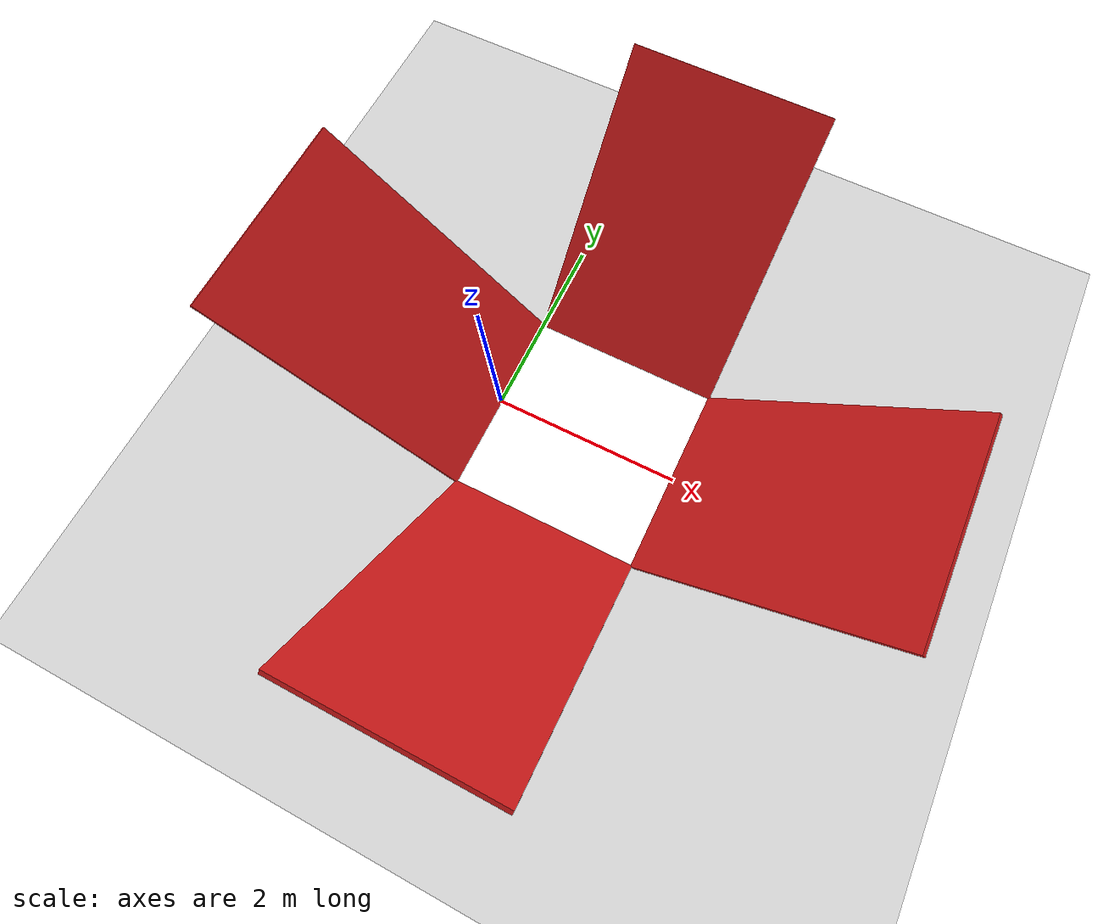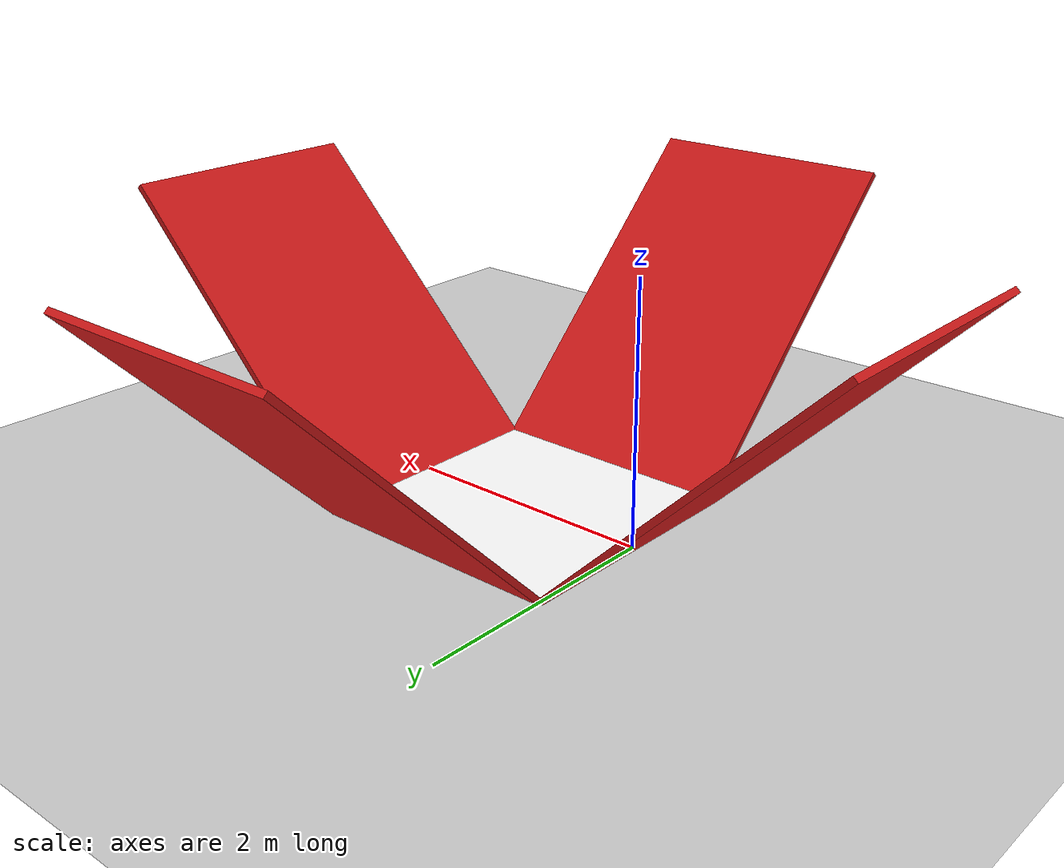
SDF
<?xml version='1.0'?>
<sdf version='1.7'>
  <world name='default'>
    <light name='sun' type='directional'>
      <cast_shadows>1</cast_shadows>
      <pose>0 0 10 0 -0 0</pose>
      <diffuse>0.8 0.8 0.8 1</diffuse>
      <specular>0.2 0.2 0.2 1</specular>
      <attenuation>
        <range>1000</range>
        <constant>0.9</constant>
        <linear>0.01</linear>
        <quadratic>0.001</quadratic>
      </attenuation>
      <direction>-0.5 0.1 -0.9</direction>
      <spot>
        <inner_angle>0</inner_angle>
        <outer_angle>0</outer_angle>
        <falloff>0</falloff>
      </spot>
    </light>
    <model name='ground_plane'>
      <static>1</static>
      <link name='link'>
        <collision name='collision'>
          <geometry>
            <plane>
              <normal>0 0 1</normal>
              <size>20 20</size>
            </plane>
          </geometry>
          <surface>
            <friction>
              <ode>
                <mu>100</mu>
                <mu2>50</mu2>
              </ode>
              <torsional>
                <ode/>
              </torsional>
            </friction>
            <contact>
              <ode/>
            </contact>
            <bounce/>
          </surface>
          <max_contacts>100</max_contacts>
        </collision>
        <visual name='visual'>
          <cast_shadows>0</cast_shadows>
          <geometry>
            <plane>
              <normal>0 0 1</normal>
              <size>20 20</size>
            </plane>
          </geometry>
          <material>
            <script>
              <uri>file://media/materials/scripts/gazebo.material</uri>
              <name>Gazebo/Grey</name>
            </script>
          </material>
        </visual>
        <self_collide>0</self_collide>
        <enable_wind>0</enable_wind>
        <kinematic>0</kinematic>
      </link>
    </model>
    <gravity>0 0 -9.8</gravity>
    <magnetic_field>6e-06 2.3e-05 -4.2e-05</magnetic_field>
    <atmosphere type='adiabatic'/>
    <physics type='ode'>
      <max_step_size>0.001</max_step_size>
      <real_time_factor>1</real_time_factor>
      <real_time_update_rate>1000</real_time_update_rate>
    </physics>
    <scene>
      <ambient>0.4 0.4 0.4 1</ambient>
      <background>0.7 0.7 0.7 1</background>
      <shadows>1</shadows>
    </scene>
    <wind/>
    <spherical_coordinates>
      <surface_model>EARTH_WGS84</surface_model>
      <latitude_deg>0</latitude_deg>
      <longitude_deg>0</longitude_deg>
      <elevation>0</elevation>
      <heading_deg>0</heading_deg>
    </spherical_coordinates>
    <include>
      <uri>model://qr_pad</uri>
      <name>target</name>
      <pose>1 0 0.002 0 0 0.00</pose>
    </include>
  </world>
</sdf>

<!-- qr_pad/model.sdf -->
<sdf version="1.9">
  <model name="qr_pad">
    <static>true</static>

    <link name="center_plate">
      <pose>0 0 0.01 0 0 0</pose>
      <visual name="visual">
        <geometry>
          <box>
            <size>2 2 0.02</size>
          </box>
        </geometry>
        <material>
          <ambient>1 1 1 1</ambient>
          <diffuse>1 1 1 1</diffuse>
          <pbr>
            <metal>
              <albedo_map>materials/textures/qr_code.png</albedo_map>
            </metal>
          </pbr>
        </material>
      </visual>
    </link>

    <link name="plate_north">
      <pose>2.06 0 1.06 0 -0.7854 0</pose>
      <visual name="visual">
        <geometry>
          <box><size>3 2 0.05</size></box>
        </geometry>
        <material><diffuse>0.8 0.1 0.1 1</diffuse></material>
      </visual>
    </link>

    <link name="plate_south">
      <pose>-2.06 0 1.06 0 0.7854 0</pose>
      <visual name="visual">
        <geometry>
          <box><size>3 2 0.05</size></box>
        </geometry>
        <material><diffuse>0.8 0.1 0.1 1</diffuse></material>
      </visual>
    </link>

    <link name="plate_east">
      <pose>0 2.06 1.06 0.7854 0 0</pose>
      <visual name="visual">
        <geometry>
          <box><size>2 3 0.05</size></box> </geometry>
        <material><diffuse>0.8 0.1 0.1 1</diffuse></material>
      </visual>
    </link>

    <link name="plate_west">
      <pose>0 -2.06 1.06 -0.7854 0 0</pose>
      <visual name="visual">
        <geometry>
          <box><size>2 3 0.05</size></box>
        </geometry>
        <material><diffuse>0.8 0.1 0.1 1</diffuse></material>
      </visual>
    </link>

  </model>
</sdf>
